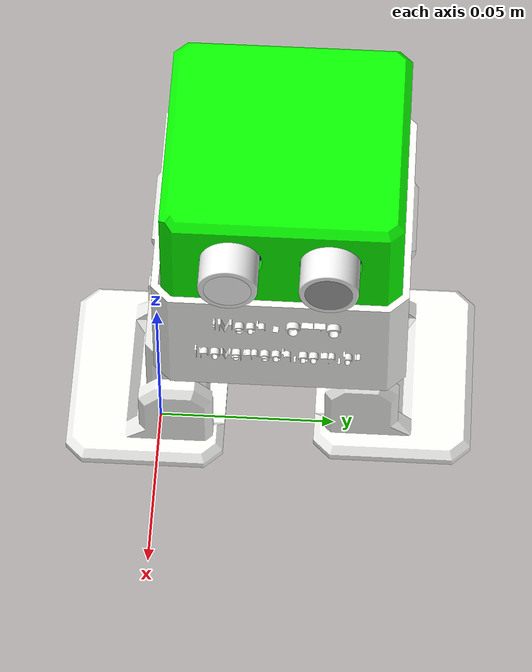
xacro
<?xml version='1.0' encoding='utf-8'?>
<robot xmlns:xacro="http://www.ros.org/wiki/xacro" name="otto">
   <xacro:include filename="$(find otto)/urdf/materials.xacro" />

   <!-- ==================== LINKS ==================== -->

   <link name="base_footprint" />

   <joint name="base_footprint_joint" type="fixed">
      <origin xyz="0.0 0.0 0.08" rpy="0.0 0.0 0.0" />
      <parent link="base_footprint" />
      <child link="base_link" />
   </joint>

   <link name="base_link">
      <inertial>
         <origin xyz="-0.017480908878091606 0.03519882134873651 -0.025083002755304264" rpy="0.0 0.0 0.0" />
         <!-- original: 0.03208 kg  ->  x10 = 0.3208 kg -->
         <mass value="0.3208" />
         <inertia ixx="2.49503e-04" iyy="2.55347e-04" izz="4.05347e-04"
                  ixy="1.7290e-06"  iyz="7.21e-07"    ixz="-2.471e-06" />
      </inertial>
      <visual>
         <origin xyz="0.0 0.0 -0.09000000000000001" rpy="0.0 0.0 0.0" />
         <geometry>
            <mesh filename="package://otto/meshes/base_link_1.stl" scale="0.001 0.001 0.001" />
         </geometry>
         <material name="ABS{Branco}" />
      </visual>
      <collision>
         <origin xyz="0.0 0.0 -0.09000000000000001" rpy="0.0 0.0 0.0" />
         <geometry>
            <mesh filename="package://otto/meshes/base_link_1.stl" scale="0.001 0.001 0.001" />
         </geometry>
      </collision>
   </link>

   <link name="RightLeg_1">
      <inertial>
         <origin xyz="-1.0223024729112406e-05 0.0 -0.01867704290601307" rpy="0.0 0.0 0.0" />
         <!-- original: 0.008348 kg  ->  x10 = 0.08348 kg -->
         <mass value="0.08348" />
         <inertia ixx="1.7007e-05" iyy="2.6586e-05" izz="1.5726e-05"
                  ixy="0.0"        iyz="0.0"         ixz="1.208e-06" />
      </inertial>
      <visual>
         <origin xyz="0.012391174437753782 -0.005158205912836666 -0.051000000000000004" rpy="0.0 0.0 0.0" />
         <geometry>
            <mesh filename="package://otto/meshes/RightLeg_1.stl" scale="0.001 0.001 0.001" />
         </geometry>
         <material name="ABS{Branco}" />
      </visual>
      <collision>
         <origin xyz="0.012391174437753782 -0.005158205912836666 -0.051000000000000004" rpy="0.0 0.0 0.0" />
         <geometry>
            <mesh filename="package://otto/meshes/RightLeg_1.stl" scale="0.001 0.001 0.001" />
         </geometry>
      </collision>
   </link>

   <link name="LeftLeg_1">
      <inertial>
         <origin xyz="8.637669678136283e-05 0.0 -0.018540132277720875" rpy="0.0 0.0 0.0" />
         <!-- original: 0.008296 kg  ->  x10 = 0.08296 kg -->
         <mass value="0.08296" />
         <inertia ixx="1.6731e-05" iyy="2.6214e-05" izz="1.5575e-05"
                  ixy="0.0"        iyz="0.0"         ixz="1.383e-06" />
      </inertial>
      <visual>
         <origin xyz="0.016999572875253794 -0.0610004271247462 -0.053000000000000005" rpy="0.0 0.0 0.0" />
         <geometry>
            <mesh filename="package://otto/meshes/LeftLeg_1.stl" scale="0.001 0.001 0.001" />
         </geometry>
         <material name="ABS{Branco}" />
      </visual>
      <collision>
         <origin xyz="0.016999572875253794 -0.0610004271247462 -0.053000000000000005" rpy="0.0 0.0 0.0" />
         <geometry>
            <mesh filename="package://otto/meshes/LeftLeg_1.stl" scale="0.001 0.001 0.001" />
         </geometry>
      </collision>
   </link>

   <link name="Ultrasonic_Sensor_v1_1_1">
      <inertial>
         <origin xyz="0.015667100965246424 0.035094427086301554 0.015158230340085038" rpy="0.0 0.0 0.0" />
         <!-- link fixo decorativo: massa minima para nao afetar COM -->
         <mass value="0.001" />
         <inertia ixx="1.0e-07" iyy="1.0e-07" izz="1.0e-07"
                  ixy="0.0"     iyz="0.0"      ixz="0.0" />
      </inertial>
      <visual>
         <origin xyz="0.0 0.0 -0.09000000000000001" rpy="0.0 0.0 0.0" />
         <geometry>
            <mesh filename="package://otto/meshes/Ultrasonic_Sensor_v1_1_1__Corpo1.stl" scale="0.001 0.001 0.001" />
         </geometry>
         <material name="Opaque{20,22,159}" />
      </visual>
      <visual>
         <origin xyz="0.0 0.0 -0.09000000000000001" rpy="0.0 0.0 0.0" />
         <geometry>
            <mesh filename="package://otto/meshes/Ultrasonic_Sensor_v1_1_1__Corpo2.stl" scale="0.001 0.001 0.001" />
         </geometry>
         <material name="Alumínio_Polido" />
      </visual>
      <visual>
         <origin xyz="0.0 0.0 -0.09000000000000001" rpy="0.0 0.0 0.0" />
         <geometry>
            <mesh filename="package://otto/meshes/Ultrasonic_Sensor_v1_1_1__Corpo3.stl" scale="0.001 0.001 0.001" />
         </geometry>
         <material name="Alumínio_Polido" />
      </visual>
      <visual>
         <origin xyz="0.0 0.0 -0.09000000000000001" rpy="0.0 0.0 0.0" />
         <geometry>
            <mesh filename="package://otto/meshes/Ultrasonic_Sensor_v1_1_1__Corpo4.stl" scale="0.001 0.001 0.001" />
         </geometry>
         <material name="Aço_Acetinado" />
      </visual>
      <visual>
         <origin xyz="0.0 0.0 -0.09000000000000001" rpy="0.0 0.0 0.0" />
         <geometry>
            <mesh filename="package://otto/meshes/Ultrasonic_Sensor_v1_1_1__Corpo5.stl" scale="0.001 0.001 0.001" />
         </geometry>
         <material name="Alumínio_Anodizadobruto{Cinza}" />
      </visual>
      <visual>
         <origin xyz="0.0 0.0 -0.09000000000000001" rpy="0.0 0.0 0.0" />
         <geometry>
            <mesh filename="package://otto/meshes/Ultrasonic_Sensor_v1_1_1__Corpo6.stl" scale="0.001 0.001 0.001" />
         </geometry>
         <material name="Aço_Acetinado" />
      </visual>
      <visual>
         <origin xyz="0.0 0.0 -0.09000000000000001" rpy="0.0 0.0 0.0" />
         <geometry>
            <mesh filename="package://otto/meshes/Ultrasonic_Sensor_v1_1_1__Corpo7.stl" scale="0.001 0.001 0.001" />
         </geometry>
         <material name="Aço_Acetinado" />
      </visual>
      <visual>
         <origin xyz="0.0 0.0 -0.09000000000000001" rpy="0.0 0.0 0.0" />
         <geometry>
            <mesh filename="package://otto/meshes/Ultrasonic_Sensor_v1_1_1__Corpo8.stl" scale="0.001 0.001 0.001" />
         </geometry>
         <material name="Aço_Acetinado" />
      </visual>
      <visual>
         <origin xyz="0.0 0.0 -0.09000000000000001" rpy="0.0 0.0 0.0" />
         <geometry>
            <mesh filename="package://otto/meshes/Ultrasonic_Sensor_v1_1_1__Corpo9.stl" scale="0.001 0.001 0.001" />
         </geometry>
         <material name="Alumínio_Anodizadobruto{Cinza}" />
      </visual>
      <visual>
         <origin xyz="0.0 0.0 -0.09000000000000001" rpy="0.0 0.0 0.0" />
         <geometry>
            <mesh filename="package://otto/meshes/Ultrasonic_Sensor_v1_1_1__Corpo10.stl" scale="0.001 0.001 0.001" />
         </geometry>
         <material name="Aço_Acetinado" />
      </visual>
      <visual>
         <origin xyz="0.0 0.0 -0.09000000000000001" rpy="0.0 0.0 0.0" />
         <geometry>
            <mesh filename="package://otto/meshes/Ultrasonic_Sensor_v1_1_1__Corpo11.stl" scale="0.001 0.001 0.001" />
         </geometry>
         <material name="Aço_Acetinado" />
      </visual>
      <visual>
         <origin xyz="0.0 0.0 -0.09000000000000001" rpy="0.0 0.0 0.0" />
         <geometry>
            <mesh filename="package://otto/meshes/Ultrasonic_Sensor_v1_1_1__Corpo12.stl" scale="0.001 0.001 0.001" />
         </geometry>
         <material name="Materialdebase-Transparente" />
      </visual>
      <visual>
         <origin xyz="0.0 0.0 -0.09000000000000001" rpy="0.0 0.0 0.0" />
         <geometry>
            <mesh filename="package://otto/meshes/Ultrasonic_Sensor_v1_1_1__Corpo13.stl" scale="0.001 0.001 0.001" />
         </geometry>
         <material name="Alumínio_Polido" />
      </visual>
      <visual>
         <origin xyz="0.0 0.0 -0.09000000000000001" rpy="0.0 0.0 0.0" />
         <geometry>
            <mesh filename="package://otto/meshes/Ultrasonic_Sensor_v1_1_1__Corpo14.stl" scale="0.001 0.001 0.001" />
         </geometry>
         <material name="Alumínio_Polido" />
      </visual>
      <collision>
         <origin xyz="0.0 0.0 -0.09000000000000001" rpy="0.0 0.0 0.0" />
         <geometry>
            <mesh filename="package://otto/meshes/Ultrasonic_Sensor_v1_1_1.stl" scale="0.001 0.001 0.001" />
         </geometry>
      </collision>
   </link>

   <link name="Head_1_1">
      <inertial>
         <origin xyz="-0.017855193601269966 0.03577461405901634 0.019109172286024715" rpy="0.0 0.0 0.0" />
         <!-- link fixo: massa simbólica -->
         <mass value="0.024" />
         <inertia ixx="1.64375e-05" iyy="1.56695e-05" izz="2.6288e-05"
                  ixy="2.718e-07"   iyz="8.04e-08"     ixz="9.08e-08" />
      </inertial>
      <visual>
         <origin xyz="-0.00011642897127503943 -6.011660760120062e-07 -0.08903341742506664" rpy="0.0 0.0 0.0" />
         <geometry>
            <mesh filename="package://otto/meshes/Head_1_1.stl" scale="0.001 0.001 0.001" />
         </geometry>
         <material name="Plástico_Fosco{Amarelo}" />
      </visual>
      <collision>
         <origin xyz="-0.00011642897127503943 -6.011660760120062e-07 -0.08903341742506664" rpy="0.0 0.0 0.0" />
         <geometry>
            <mesh filename="package://otto/meshes/Head_1_1.stl" scale="0.001 0.001 0.001" />
         </geometry>
      </collision>
   </link>

   <link name="FootRight_1">
      <inertial>
         <origin xyz="-0.01692768844509787 -0.0076979010066632785 -0.010195669876470142" rpy="0.0 0.0 0.0" />
         <!-- original: 0.012749 kg  ->  x12 = 0.15299 kg -->
         <mass value="0.15299" />
         <inertia ixx="2.9837e-05" iyy="6.4370e-05" izz="7.9057e-05"
                  ixy="-9.096e-07"  iyz="-4.866e-06"  ixz="-7.32e-07" />
      </inertial>
      <visual>
         <origin xyz="-0.005508825562246209 -0.005158205912836655 -0.0137" rpy="0.0 0.0 0.0" />
         <geometry>
            <mesh filename="package://otto/meshes/FootRight_1.stl" scale="0.001 0.001 0.001" />
         </geometry>
         <material name="ABS{Branco}" />
      </visual>
      <collision>
         <origin xyz="-0.005508825562246209 -0.005158205912836655 -0.0137" rpy="0.0 0.0 0.0" />
         <geometry>
            <mesh filename="package://otto/meshes/FootRight_1.stl" scale="0.001 0.001 0.001" />
         </geometry>
      </collision>
   </link>

   <link name="FootLeft_1">
      <inertial>
         <origin xyz="-0.016928050017156856 0.004599559866878043 -0.012894741270675017" rpy="0.0 0.0 0.0" />
         <!-- original: 0.012747 kg  ->  x12 = 0.15296 kg -->
         <mass value="0.15296" />
         <inertia ixx="2.9833e-05" iyy="6.4370e-05" izz="7.9055e-05"
                  ixy="9.096e-07"   iyz="4.867e-06"   ixz="-7.32e-07" />
      </inertial>
      <visual>
         <origin xyz="-0.0005004271247461972 -0.06100042712474619 -0.0150" rpy="0.0 0.0 0.0" />
         <geometry>
            <mesh filename="package://otto/meshes/FootLeft_1.stl" scale="0.001 0.001 0.001" />
         </geometry>
         <material name="ABS{Branco}" />
      </visual>
      <collision>
         <origin xyz="-0.0005004271247461972 -0.06100042712474619 -0.0150" rpy="0.0 0.0 0.0" />
         <geometry>
            <mesh filename="package://otto/meshes/FootLeft_1.stl" scale="0.001 0.001 0.001" />
         </geometry>
      </collision>
   </link>

   <!-- ==================== JOINTS ==================== -->

   <joint name="leg_right_joint" type="revolute">
      <origin xyz="-0.012391174437753782 0.005158205912836682 -0.039" rpy="0.0 0.0 0.0" />
      <parent link="base_link" />
      <child link="RightLeg_1" />
      <axis xyz="0.0 0.0 1.0" />
      <limit upper="1.5707963267948966" lower="-1.5707963267948966" effort="100.0" velocity="100.0" />
   </joint>

   <joint name="leg_left_joint" type="revolute">
      <origin xyz="-0.016999572875253794 0.061000427124746216 -0.037000000000000005" rpy="0.0 0.0 0.0" />
      <parent link="base_link" />
      <child link="LeftLeg_1" />
      <axis xyz="0.0 0.0 -1.0" />
      <limit upper="1.5707963267948966" lower="-1.5707963267948966" effort="100.0" velocity="100.0" />
   </joint>

   <joint name="ultrasonic_joint" type="fixed">
      <origin xyz="0.0 0.0 0.0" rpy="0.0 0.0 0.0" />
      <parent link="base_link" />
      <child link="Ultrasonic_Sensor_v1_1_1" />
   </joint>

   <joint name="head_joint" type="fixed">
      <origin xyz="0.00011642897127504436 6.011660760218973e-07 -0.0009665825749333657" rpy="0.0 0.0 0.0" />
      <parent link="base_link" />
      <child link="Head_1_1" />
   </joint>

   <joint name="foot_right_joint" type="revolute">
      <origin xyz="0.0179 0.0 -0.031" rpy="0.0 0.0 0.0" />
      <parent link="RightLeg_1" />
      <child link="FootRight_1" />
      <axis xyz="1.0 0.0 0.0" />
      <limit upper="1.5707963267948966" lower="-1.5707963267948966" effort="100.0" velocity="100.0" />
   </joint>

   <joint name="foot_left_joint" type="revolute">
      <origin xyz="0.0175 0.0 -0.031" rpy="0.0 0.0 0.0" />
      <parent link="LeftLeg_1" />
      <child link="FootLeft_1" />
      <axis xyz="1.0 0.0 0.0" />
      <limit upper="1.5707963267948966" lower="-1.5707963267948966" effort="100.0" velocity="100.0" />
   </joint>

   <!-- ==================== GAZEBO PLUGINS ==================== -->
   <gazebo>
      <plugin filename="gz-sim-joint-position-controller-system"
               name="gz::sim::systems::JointPositionController">
         <joint_name>leg_right_joint</joint_name>
         <topic>/leg_right_joint/cmd</topic>
         <p_gain>10.0</p_gain>
         <i_gain>0.0</i_gain>
         <d_gain>0.5</d_gain>
      </plugin>
      <plugin filename="gz-sim-joint-position-controller-system"
               name="gz::sim::systems::JointPositionController">
         <joint_name>leg_left_joint</joint_name>
         <topic>/leg_left_joint/cmd</topic>
         <p_gain>10.0</p_gain>
         <i_gain>0.0</i_gain>
         <d_gain>0.5</d_gain>
      </plugin>
      <plugin filename="gz-sim-joint-position-controller-system"
               name="gz::sim::systems::JointPositionController">
         <joint_name>foot_right_joint</joint_name>
         <topic>/foot_right_joint/cmd</topic>
         <p_gain>10.0</p_gain>
         <i_gain>0.0</i_gain>
         <d_gain>0.5</d_gain>
      </plugin>
      <plugin filename="gz-sim-joint-position-controller-system"
               name="gz::sim::systems::JointPositionController">
         <joint_name>foot_left_joint</joint_name>
         <topic>/foot_left_joint/cmd</topic>
         <p_gain>10.0</p_gain>
         <i_gain>0.0</i_gain>
         <d_gain>0.5</d_gain>
      </plugin>
   </gazebo>

   <!-- ==================== CONTATO/FRICTION PES ==================== -->
   <gazebo reference="FootRight_1">
      <surface>
         <friction>
            <ode>
               <mu>0.8</mu>
               <mu2>0.8</mu2>
            </ode>
         </friction>
         <contact>
            <ode>
               <kp>1e5</kp>
               <kd>1.0</kd>
               <min_depth>0.001</min_depth>
            </ode>
         </contact>
      </surface>
   </gazebo>

   <gazebo reference="FootLeft_1">
      <surface>
         <friction>
            <ode>
               <mu>0.8</mu>
               <mu2>0.8</mu2>
            </ode>
         </friction>
         <contact>
            <ode>
               <kp>1e5</kp>
               <kd>1.0</kd>
               <min_depth>0.001</min_depth>
            </ode>
         </contact>
      </surface>
   </gazebo>

</robot>

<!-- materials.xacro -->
<robot name="otto" xmlns:xacro="http://www.ros.org/wiki/xacro">
   <material name="silver_default">
      <color rgba="0.700 0.700 0.700 1.000" />
   </material>
   <material name="ABS{Branco}">
      <color rgba="0.9647058823529412 0.9647058823529412 0.9529411764705882 1.0" />
   </material>
   <material name="Plástico_Fosco{Amarelo}">
      <color rgba="0.03529411764705882 1.0 0.0 1.0" />
   </material>
   <material name="Opaque{20,22,159}">
      <color rgba="0.0784313725490196 0.08627450980392157 0.6235294117647059 1.0" />
   </material>
   <material name="Alumínio_Polido">
      <color rgba="0.9607843137254902 0.9607843137254902 0.9647058823529412 1.0" />
   </material>
   <material name="Aço_Acetinado">
      <color rgba="0.6274509803921569 0.6274509803921569 0.6274509803921569 1.0" />
   </material>
   <material name="Alumínio_Anodizadobruto{Cinza}">
      <color rgba="0.5372549019607843 0.5372549019607843 0.5372549019607843 1.0" />
   </material>
   <material name="Materialdebase-Transparente">
      <color rgba="1.0 1.0 1.0 1.0" />
   </material>
</robot>
